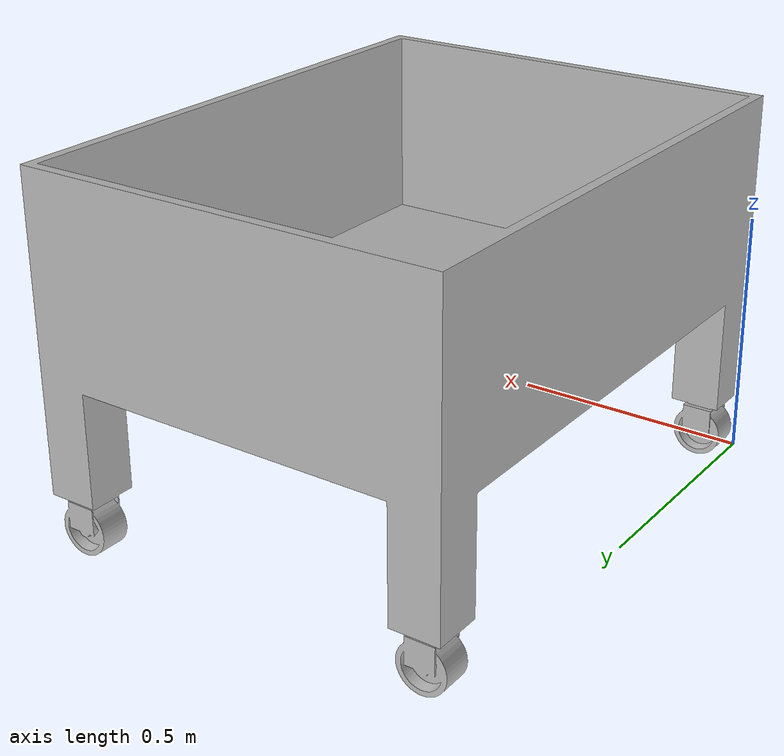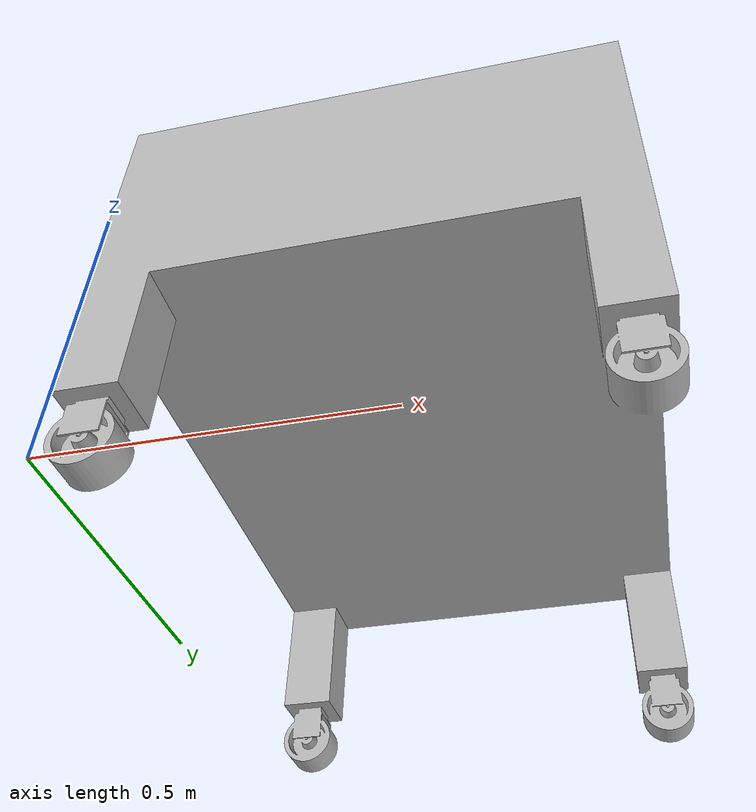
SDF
<?xml version="1.0" ?>
<sdf version="1.5">
  <model name="yuk">
   <static>false</static>
   <pose>0 0 0.0 0 0 0</pose>
    <link name="link">

      <collision name="surface">
        <geometry>
          <mesh>
            <uri>model://yuk/meshes/YUK2.dae</uri>
          </mesh>
        </geometry>
      </collision>

      <collision name="base">
        <geometry>
          <mesh>
           <uri>model://yuk/meshes/YUK2.dae</uri>
          </mesh>
        </geometry>
      </collision>
      <inertial>
        <pose>0.425000 0.550000 0.431822 0 0 0</pose>
        <mass>0.5</mass>
        <inertia>
          <ixx> 0.011384</ixx>
          <ixy>0.000000</ixy>
          <ixz>0.000000</ixz>
          <iyy>0.007729</iyy>
          <iyz>0.000000 </iyz>
          <izz>0.016046 </izz>
        </inertia>
      </inertial>

      <visual name="visual">
        <geometry>
          <mesh>
            <uri>model://yuk/meshes/YUK2.dae</uri>
          </mesh>
        </geometry>
        <material>
          <script>
            <name>Yuk</name>
            <uri>model://yuk/materials/scripts</uri>
            <uri>model://yuk/materials/textures</uri>
          </script>
        </material>
      </visual>
    </link>
  </model>
</sdf>
